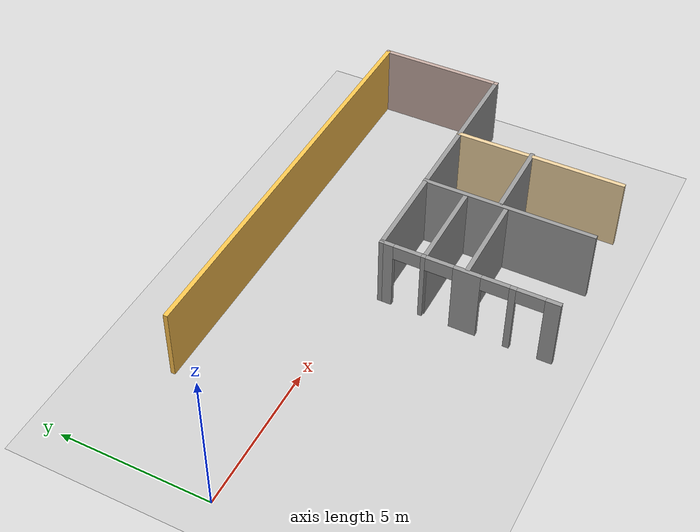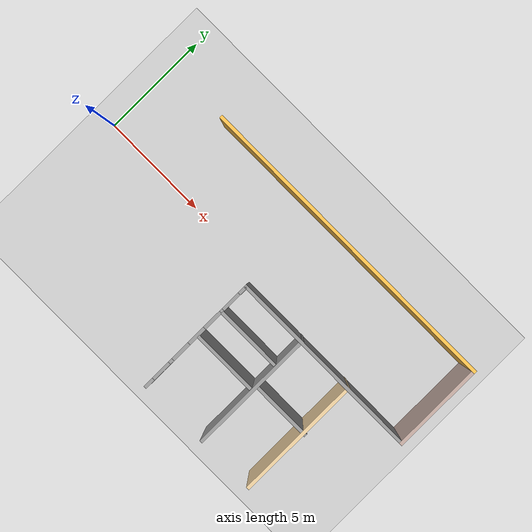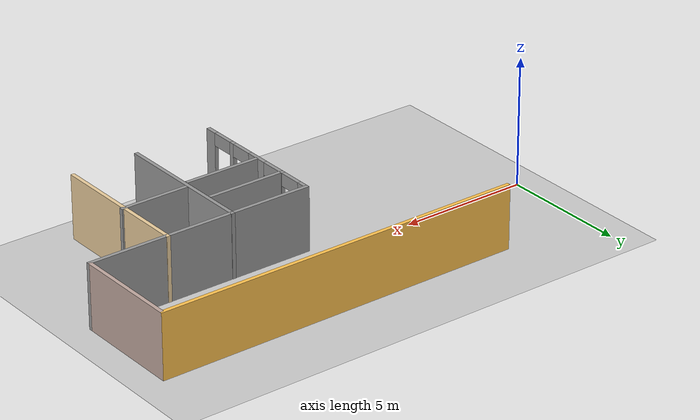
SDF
<sdf version="1.6">
 <world name="default">
  <model name="ground_plane">
   <static>1</static>
   <link name="link">
    <collision name="collision">
     <geometry><plane><normal>0 0 1</normal><size>100 100</size></plane></geometry>
     <surface><friction><ode><mu>100</mu><mu2>50</mu2></ode></friction></surface>
    </collision>
    <visual name="visual">
     <cast_shadows>0</cast_shadows>
     <geometry><plane><normal>0 0 1</normal><size>100 100</size></plane></geometry>
     <material>
      <script><uri>file://media/materials/scripts/gazebo.material</uri><name>Gazebo/Grey</name></script>
     </material>
    </visual>
   </link>
  </model>
  <model name="model">
   <link name="Wall_100">
    <pose>0.188472 0.1 0 0 0 -1.5708</pose>
    <visual name="Wall_100_Visual_8">
     <pose>1.96449 0 2.25 0 -0 0</pose>
     <geometry><box><size>0.9 0.15 0.5</size></box></geometry>
     <material>
      <script><uri>file://media/materials/scripts/gazebo.material</uri><name>Gazebo/Grey</name></script>
      <ambient>1 1 1 1</ambient>
      <shader type="pixel"/>
      <diffuse>0.7 0.7 0.7 1</diffuse>
      <specular>0.01 0.01 0.01 1</specular>
      <emissive>0 0 0 1</emissive>
     </material>
     <meta><layer>0</layer></meta>
    </visual>
    <visual name="Wall_100_Visual_0">
     <pose>-2.66165 0 1.25 0 -0 0</pose>
     <geometry><box><size>0.47671 0.15 2.5</size></box></geometry>
     <material>
      <script><uri>file://media/materials/scripts/gazebo.material</uri><name>Gazebo/Grey</name></script>
      <ambient>1 1 1 1</ambient>
      <shader type="pixel"/>
      <diffuse>0.7 0.7 0.7 1</diffuse>
      <specular>0.01 0.01 0.01 1</specular>
      <emissive>0 0 0 1</emissive>
     </material>
     <meta><layer>0</layer></meta>
    </visual>
    <visual name="Wall_100_Visual_1">
     <pose>-1.4503 0 1.25 0 -0 0</pose>
     <geometry><box><size>0.145974 0.15 2.5</size></box></geometry>
     <material>
      <script><uri>file://media/materials/scripts/gazebo.material</uri><name>Gazebo/Grey</name></script>
      <ambient>1 1 1 1</ambient>
      <shader type="pixel"/>
      <diffuse>0.7 0.7 0.7 1</diffuse>
      <specular>0.01 0.01 0.01 1</specular>
      <emissive>0 0 0 1</emissive>
     </material>
     <meta><layer>0</layer></meta>
    </visual>
    <visual name="Wall_100_Visual_2">
     <pose>-0.035162 0 1.25 0 -0 0</pose>
     <geometry><box><size>0.884308 0.15 2.5</size></box></geometry>
     <material>
      <script><uri>file://media/materials/scripts/gazebo.material</uri><name>Gazebo/Grey</name></script>
      <ambient>1 1 1 1</ambient>
      <shader type="pixel"/>
      <diffuse>0.7 0.7 0.7 1</diffuse>
      <specular>0.01 0.01 0.01 1</specular>
      <emissive>0 0 0 1</emissive>
     </material>
     <meta><layer>0</layer></meta>
    </visual>
    <visual name="Wall_100_Visual_3">
     <pose>1.41074 0 1.25 0 -0 0</pose>
     <geometry><box><size>0.207502 0.15 2.5</size></box></geometry>
     <material>
      <script><uri>file://media/materials/scripts/gazebo.material</uri><name>Gazebo/Grey</name></script>
      <ambient>1 1 1 1</ambient>
      <shader type="pixel"/>
      <diffuse>0.7 0.7 0.7 1</diffuse>
      <specular>0.01 0.01 0.01 1</specular>
      <emissive>0 0 0 1</emissive>
     </material>
     <meta><layer>0</layer></meta>
    </visual>
    <visual name="Wall_100_Visual_4">
     <pose>2.65725 0 1.25 0 -0 0</pose>
     <geometry><box><size>0.485506 0.15 2.5</size></box></geometry>
     <material>
      <script><uri>file://media/materials/scripts/gazebo.material</uri><name>Gazebo/Grey</name></script>
      <ambient>1 1 1 1</ambient>
      <shader type="pixel"/>
      <diffuse>0.7 0.7 0.7 1</diffuse>
      <specular>0.01 0.01 0.01 1</specular>
      <emissive>0 0 0 1</emissive>
     </material>
     <meta><layer>0</layer></meta>
    </visual>
    <visual name="Wall_100_Visual_5">
     <pose>-1.97329 0 2.25 0 -0 0</pose>
     <geometry><box><size>0.9 0.15 0.5</size></box></geometry>
     <material>
      <script><uri>file://media/materials/scripts/gazebo.material</uri><name>Gazebo/Grey</name></script>
      <ambient>1 1 1 1</ambient>
      <shader type="pixel"/>
      <diffuse>0.7 0.7 0.7 1</diffuse>
      <specular>0.01 0.01 0.01 1</specular>
      <emissive>0 0 0 1</emissive>
     </material>
     <meta><layer>0</layer></meta>
    </visual>
    <visual name="Wall_100_Visual_6">
     <pose>-0.927316 0 2.25 0 -0 0</pose>
     <geometry><box><size>0.9 0.15 0.5</size></box></geometry>
     <material>
      <script><uri>file://media/materials/scripts/gazebo.material</uri><name>Gazebo/Grey</name></script>
      <ambient>1 1 1 1</ambient>
      <shader type="pixel"/>
      <diffuse>0.7 0.7 0.7 1</diffuse>
      <specular>0.01 0.01 0.01 1</specular>
      <emissive>0 0 0 1</emissive>
     </material>
     <meta><layer>0</layer></meta>
    </visual>
    <visual name="Wall_100_Visual_7">
     <pose>0.856992 0 2.25 0 -0 0</pose>
     <geometry><box><size>0.9 0.15 0.5</size></box></geometry>
     <material>
      <script><uri>file://media/materials/scripts/gazebo.material</uri><name>Gazebo/Grey</name></script>
      <ambient>1 1 1 1</ambient>
      <shader type="pixel"/>
      <diffuse>0.7 0.7 0.7 1</diffuse>
      <specular>0.01 0.01 0.01 1</specular>
      <emissive>0 0 0 1</emissive>
     </material>
     <meta><layer>0</layer></meta>
    </visual>
    <collision name="Wall_100_Collision_0">
     <pose>-2.66165 0 1.25 0 -0 0</pose>
     <geometry><box><size>0.47671 0.15 2.5</size></box></geometry>
     <surface>
      <friction>
       <ode><mu>1</mu><mu2>1</mu2><fdir1>0 0 0</fdir1><slip1>0</slip1><slip2>0</slip2></ode>
       <torsional>
        <coefficient>1</coefficient>
        <patch_radius>0</patch_radius>
        <surface_radius>0</surface_radius>
        <use_patch_radius>1</use_patch_radius>
        <ode><slip>0</slip></ode>
       </torsional>
      </friction>
      <bounce><restitution_coefficient>0</restitution_coefficient><threshold>1e+06</threshold></bounce>
      <contact>
       <collide_without_contact>0</collide_without_contact>
       <collide_without_contact_bitmask>1</collide_without_contact_bitmask>
       <collide_bitmask>1</collide_bitmask>
       <ode>
        <soft_cfm>0</soft_cfm>
        <soft_erp>0.2</soft_erp>
        <kp>1e+13</kp>
        <kd>1</kd>
        <max_vel>0.01</max_vel>
        <min_depth>0</min_depth>
       </ode>
       <bullet>
        <split_impulse>1</split_impulse>
        <split_impulse_penetration_threshold>-0.01</split_impulse_penetration_threshold>
        <soft_cfm>0</soft_cfm>
        <soft_erp>0.2</soft_erp>
        <kp>1e+13</kp>
        <kd>1</kd>
       </bullet>
      </contact>
     </surface>
    </collision>
    <collision name="Wall_100_Collision_1">
     <pose>-1.4503 0 1.25 0 -0 0</pose>
     <geometry><box><size>0.145974 0.15 2.5</size></box></geometry>
     <surface>
      <friction>
       <ode><mu>1</mu><mu2>1</mu2><fdir1>0 0 0</fdir1><slip1>0</slip1><slip2>0</slip2></ode>
       <torsional>
        <coefficient>1</coefficient>
        <patch_radius>0</patch_radius>
        <surface_radius>0</surface_radius>
        <use_patch_radius>1</use_patch_radius>
        <ode><slip>0</slip></ode>
       </torsional>
      </friction>
      <bounce><restitution_coefficient>0</restitution_coefficient><threshold>1e+06</threshold></bounce>
      <contact>
       <collide_without_contact>0</collide_without_contact>
       <collide_without_contact_bitmask>1</collide_without_contact_bitmask>
       <collide_bitmask>1</collide_bitmask>
       <ode>
        <soft_cfm>0</soft_cfm>
        <soft_erp>0.2</soft_erp>
        <kp>1e+13</kp>
        <kd>1</kd>
        <max_vel>0.01</max_vel>
        <min_depth>0</min_depth>
       </ode>
       <bullet>
        <split_impulse>1</split_impulse>
        <split_impulse_penetration_threshold>-0.01</split_impulse_penetration_threshold>
        <soft_cfm>0</soft_cfm>
        <soft_erp>0.2</soft_erp>
        <kp>1e+13</kp>
        <kd>1</kd>
       </bullet>
      </contact>
     </surface>
    </collision>
    <collision name="Wall_100_Collision_2">
     <pose>-0.035162 0 1.25 0 -0 0</pose>
     <geometry><box><size>0.884308 0.15 2.5</size></box></geometry>
     <surface>
      <friction>
       <ode><mu>1</mu><mu2>1</mu2><fdir1>0 0 0</fdir1><slip1>0</slip1><slip2>0</slip2></ode>
       <torsional>
        <coefficient>1</coefficient>
        <patch_radius>0</patch_radius>
        <surface_radius>0</surface_radius>
        <use_patch_radius>1</use_patch_radius>
        <ode><slip>0</slip></ode>
       </torsional>
      </friction>
      <bounce><restitution_coefficient>0</restitution_coefficient><threshold>1e+06</threshold></bounce>
      <contact>
       <collide_without_contact>0</collide_without_contact>
       <collide_without_contact_bitmask>1</collide_without_contact_bitmask>
       <collide_bitmask>1</collide_bitmask>
       <ode>
        <soft_cfm>0</soft_cfm>
        <soft_erp>0.2</soft_erp>
        <kp>1e+13</kp>
        <kd>1</kd>
        <max_vel>0.01</max_vel>
        <min_depth>0</min_depth>
       </ode>
       <bullet>
        <split_impulse>1</split_impulse>
        <split_impulse_penetration_threshold>-0.01</split_impulse_penetration_threshold>
        <soft_cfm>0</soft_cfm>
        <soft_erp>0.2</soft_erp>
        <kp>1e+13</kp>
        <kd>1</kd>
       </bullet>
      </contact>
     </surface>
    </collision>
    <collision name="Wall_100_Collision_3">
     <pose>1.41074 0 1.25 0 -0 0</pose>
     <geometry><box><size>0.207502 0.15 2.5</size></box></geometry>
     <surface>
      <friction>
       <ode><mu>1</mu><mu2>1</mu2><fdir1>0 0 0</fdir1><slip1>0</slip1><slip2>0</slip2></ode>
       <torsional>
        <coefficient>1</coefficient>
        <patch_radius>0</patch_radius>
        <surface_radius>0</surface_radius>
        <use_patch_radius>1</use_patch_radius>
        <ode><slip>0</slip></ode>
       </torsional>
      </friction>
      <bounce><restitution_coefficient>0</restitution_coefficient><threshold>1e+06</threshold></bounce>
      <contact>
       <collide_without_contact>0</collide_without_contact>
       <collide_without_contact_bitmask>1</collide_without_contact_bitmask>
       <collide_bitmask>1</collide_bitmask>
       <ode>
        <soft_cfm>0</soft_cfm>
        <soft_erp>0.2</soft_erp>
        <kp>1e+13</kp>
        <kd>1</kd>
        <max_vel>0.01</max_vel>
        <min_depth>0</min_depth>
       </ode>
       <bullet>
        <split_impulse>1</split_impulse>
        <split_impulse_penetration_threshold>-0.01</split_impulse_penetration_threshold>
        <soft_cfm>0</soft_cfm>
        <soft_erp>0.2</soft_erp>
        <kp>1e+13</kp>
        <kd>1</kd>
       </bullet>
      </contact>
     </surface>
    </collision>
    <collision name="Wall_100_Collision_5">
     <pose>-1.97329 0 2.25 0 -0 0</pose>
     <geometry><box><size>0.9 0.15 0.5</size></box></geometry>
     <surface>
      <friction>
       <ode><mu>1</mu><mu2>1</mu2><fdir1>0 0 0</fdir1><slip1>0</slip1><slip2>0</slip2></ode>
       <torsional>
        <coefficient>1</coefficient>
        <patch_radius>0</patch_radius>
        <surface_radius>0</surface_radius>
        <use_patch_radius>1</use_patch_radius>
        <ode><slip>0</slip></ode>
       </torsional>
      </friction>
      <bounce><restitution_coefficient>0</restitution_coefficient><threshold>1e+06</threshold></bounce>
      <contact>
       <collide_without_contact>0</collide_without_contact>
       <collide_without_contact_bitmask>1</collide_without_contact_bitmask>
       <collide_bitmask>1</collide_bitmask>
       <ode>
        <soft_cfm>0</soft_cfm>
        <soft_erp>0.2</soft_erp>
        <kp>1e+13</kp>
        <kd>1</kd>
        <max_vel>0.01</max_vel>
        <min_depth>0</min_depth>
       </ode>
       <bullet>
        <split_impulse>1</split_impulse>
        <split_impulse_penetration_threshold>-0.01</split_impulse_penetration_threshold>
        <soft_cfm>0</soft_cfm>
        <soft_erp>0.2</soft_erp>
        <kp>1e+13</kp>
        <kd>1</kd>
       </bullet>
      </contact>
     </surface>
    </collision>
    <collision name="Wall_100_Collision_4">
     <pose>2.65725 0 1.25 0 -0 0</pose>
     <geometry><box><size>0.485506 0.15 2.5</size></box></geometry>
     <surface>
      <friction>
       <ode><mu>1</mu><mu2>1</mu2><fdir1>0 0 0</fdir1><slip1>0</slip1><slip2>0</slip2></ode>
       <torsional>
        <coefficient>1</coefficient>
        <patch_radius>0</patch_radius>
        <surface_radius>0</surface_radius>
        <use_patch_radius>1</use_patch_radius>
        <ode><slip>0</slip></ode>
       </torsional>
      </friction>
      <bounce><restitution_coefficient>0</restitution_coefficient><threshold>1e+06</threshold></bounce>
      <contact>
       <collide_without_contact>0</collide_without_contact>
       <collide_without_contact_bitmask>1</collide_without_contact_bitmask>
       <collide_bitmask>1</collide_bitmask>
       <ode>
        <soft_cfm>0</soft_cfm>
        <soft_erp>0.2</soft_erp>
        <kp>1e+13</kp>
        <kd>1</kd>
        <max_vel>0.01</max_vel>
        <min_depth>0</min_depth>
       </ode>
       <bullet>
        <split_impulse>1</split_impulse>
        <split_impulse_penetration_threshold>-0.01</split_impulse_penetration_threshold>
        <soft_cfm>0</soft_cfm>
        <soft_erp>0.2</soft_erp>
        <kp>1e+13</kp>
        <kd>1</kd>
       </bullet>
      </contact>
     </surface>
    </collision>
    <collision name="Wall_100_Collision_6">
     <pose>-0.927316 0 2.25 0 -0 0</pose>
     <geometry><box><size>0.9 0.15 0.5</size></box></geometry>
     <surface>
      <friction>
       <ode><mu>1</mu><mu2>1</mu2><fdir1>0 0 0</fdir1><slip1>0</slip1><slip2>0</slip2></ode>
       <torsional>
        <coefficient>1</coefficient>
        <patch_radius>0</patch_radius>
        <surface_radius>0</surface_radius>
        <use_patch_radius>1</use_patch_radius>
        <ode><slip>0</slip></ode>
       </torsional>
      </friction>
      <bounce><restitution_coefficient>0</restitution_coefficient><threshold>1e+06</threshold></bounce>
      <contact>
       <collide_without_contact>0</collide_without_contact>
       <collide_without_contact_bitmask>1</collide_without_contact_bitmask>
       <collide_bitmask>1</collide_bitmask>
       <ode>
        <soft_cfm>0</soft_cfm>
        <soft_erp>0.2</soft_erp>
        <kp>1e+13</kp>
        <kd>1</kd>
        <max_vel>0.01</max_vel>
        <min_depth>0</min_depth>
       </ode>
       <bullet>
        <split_impulse>1</split_impulse>
        <split_impulse_penetration_threshold>-0.01</split_impulse_penetration_threshold>
        <soft_cfm>0</soft_cfm>
        <soft_erp>0.2</soft_erp>
        <kp>1e+13</kp>
        <kd>1</kd>
       </bullet>
      </contact>
     </surface>
    </collision>
    <collision name="Wall_100_Collision_7">
     <pose>0.856992 0 2.25 0 -0 0</pose>
     <geometry><box><size>0.9 0.15 0.5</size></box></geometry>
     <surface>
      <friction>
       <ode><mu>1</mu><mu2>1</mu2><fdir1>0 0 0</fdir1><slip1>0</slip1><slip2>0</slip2></ode>
       <torsional>
        <coefficient>1</coefficient>
        <patch_radius>0</patch_radius>
        <surface_radius>0</surface_radius>
        <use_patch_radius>1</use_patch_radius>
        <ode><slip>0</slip></ode>
       </torsional>
      </friction>
      <bounce><restitution_coefficient>0</restitution_coefficient><threshold>1e+06</threshold></bounce>
      <contact>
       <collide_without_contact>0</collide_without_contact>
       <collide_without_contact_bitmask>1</collide_without_contact_bitmask>
       <collide_bitmask>1</collide_bitmask>
       <ode>
        <soft_cfm>0</soft_cfm>
        <soft_erp>0.2</soft_erp>
        <kp>1e+13</kp>
        <kd>1</kd>
        <max_vel>0.01</max_vel>
        <min_depth>0</min_depth>
       </ode>
       <bullet>
        <split_impulse>1</split_impulse>
        <split_impulse_penetration_threshold>-0.01</split_impulse_penetration_threshold>
        <soft_cfm>0</soft_cfm>
        <soft_erp>0.2</soft_erp>
        <kp>1e+13</kp>
        <kd>1</kd>
       </bullet>
      </contact>
     </surface>
    </collision>
    <collision name="Wall_100_Collision_8">
     <pose>1.96449 0 2.25 0 -0 0</pose>
     <geometry><box><size>0.9 0.15 0.5</size></box></geometry>
     <surface>
      <friction>
       <ode><mu>1</mu><mu2>1</mu2><fdir1>0 0 0</fdir1><slip1>0</slip1><slip2>0</slip2></ode>
       <torsional>
        <coefficient>1</coefficient>
        <patch_radius>0</patch_radius>
        <surface_radius>0</surface_radius>
        <use_patch_radius>1</use_patch_radius>
        <ode><slip>0</slip></ode>
       </torsional>
      </friction>
      <bounce><restitution_coefficient>0</restitution_coefficient><threshold>1e+06</threshold></bounce>
      <contact>
       <collide_without_contact>0</collide_without_contact>
       <collide_without_contact_bitmask>1</collide_without_contact_bitmask>
       <collide_bitmask>1</collide_bitmask>
       <ode>
        <soft_cfm>0</soft_cfm>
        <soft_erp>0.2</soft_erp>
        <kp>1e+13</kp>
        <kd>1</kd>
        <max_vel>0.01</max_vel>
        <min_depth>0</min_depth>
       </ode>
       <bullet>
        <split_impulse>1</split_impulse>
        <split_impulse_penetration_threshold>-0.01</split_impulse_penetration_threshold>
        <soft_cfm>0</soft_cfm>
        <soft_erp>0.2</soft_erp>
        <kp>1e+13</kp>
        <kd>1</kd>
       </bullet>
      </contact>
     </surface>
    </collision>
   </link>
   <link name="Wall_102">
    <pose>1.73212 1.51954 0 0 -0 0</pose>
    <visual name="Wall_102_Visual">
     <pose>0 0 1.25 0 -0 0</pose>
     <geometry><box><size>3 0.15 2.5</size></box></geometry>
     <material>
      <script><uri>file://media/materials/scripts/gazebo.material</uri><name>Gazebo/Grey</name></script>
      <ambient>1 1 1 1</ambient>
      <shader type="pixel"/>
      <diffuse>0.7 0.7 0.7 1</diffuse>
      <specular>0.01 0.01 0.01 1</specular>
      <emissive>0 0 0 1</emissive>
     </material>
     <meta><layer>0</layer></meta>
    </visual>
    <collision name="Wall_102_Collision">
     <pose>0 0 1.25 0 -0 0</pose>
     <geometry><box><size>3 0.15 2.5</size></box></geometry>
     <surface>
      <friction>
       <ode><mu>1</mu><mu2>1</mu2><fdir1>0 0 0</fdir1><slip1>0</slip1><slip2>0</slip2></ode>
       <torsional>
        <coefficient>1</coefficient>
        <patch_radius>0</patch_radius>
        <surface_radius>0</surface_radius>
        <use_patch_radius>1</use_patch_radius>
        <ode><slip>0</slip></ode>
       </torsional>
      </friction>
      <bounce><restitution_coefficient>0</restitution_coefficient><threshold>1e+06</threshold></bounce>
      <contact>
       <collide_without_contact>0</collide_without_contact>
       <collide_without_contact_bitmask>1</collide_without_contact_bitmask>
       <collide_bitmask>1</collide_bitmask>
       <ode>
        <soft_cfm>0</soft_cfm>
        <soft_erp>0.2</soft_erp>
        <kp>1e+13</kp>
        <kd>1</kd>
        <max_vel>0.01</max_vel>
        <min_depth>0</min_depth>
       </ode>
       <bullet>
        <split_impulse>1</split_impulse>
        <split_impulse_penetration_threshold>-0.01</split_impulse_penetration_threshold>
        <soft_cfm>0</soft_cfm>
        <soft_erp>0.2</soft_erp>
        <kp>1e+13</kp>
        <kd>1</kd>
       </bullet>
      </contact>
     </surface>
    </collision>
   </link>
   <link name="Wall_104">
    <pose>1.73212 0.165926 0 0 -0 0</pose>
    <visual name="Wall_104_Visual">
     <pose>0 0 1.25 0 -0 0</pose>
     <geometry><box><size>3 0.15 2.5</size></box></geometry>
     <material>
      <script><uri>file://media/materials/scripts/gazebo.material</uri><name>Gazebo/Grey</name></script>
      <ambient>1 1 1 1</ambient>
      <shader type="pixel"/>
      <diffuse>0.7 0.7 0.7 1</diffuse>
      <specular>0.01 0.01 0.01 1</specular>
      <emissive>0 0 0 1</emissive>
     </material>
     <meta><layer>0</layer></meta>
    </visual>
    <collision name="Wall_104_Collision">
     <pose>0 0 1.25 0 -0 0</pose>
     <geometry><box><size>3 0.15 2.5</size></box></geometry>
     <surface>
      <friction>
       <ode><mu>1</mu><mu2>1</mu2><fdir1>0 0 0</fdir1><slip1>0</slip1><slip2>0</slip2></ode>
       <torsional>
        <coefficient>1</coefficient>
        <patch_radius>0</patch_radius>
        <surface_radius>0</surface_radius>
        <use_patch_radius>1</use_patch_radius>
        <ode><slip>0</slip></ode>
       </torsional>
      </friction>
      <bounce><restitution_coefficient>0</restitution_coefficient><threshold>1e+06</threshold></bounce>
      <contact>
       <collide_without_contact>0</collide_without_contact>
       <collide_without_contact_bitmask>1</collide_without_contact_bitmask>
       <collide_bitmask>1</collide_bitmask>
       <ode>
        <soft_cfm>0</soft_cfm>
        <soft_erp>0.2</soft_erp>
        <kp>1e+13</kp>
        <kd>1</kd>
        <max_vel>0.01</max_vel>
        <min_depth>0</min_depth>
       </ode>
       <bullet>
        <split_impulse>1</split_impulse>
        <split_impulse_penetration_threshold>-0.01</split_impulse_penetration_threshold>
        <soft_cfm>0</soft_cfm>
        <soft_erp>0.2</soft_erp>
        <kp>1e+13</kp>
        <kd>1</kd>
       </bullet>
      </contact>
     </surface>
    </collision>
   </link>
   <link name="Wall_13">
    <pose>1.86347 7.025 0 0 -0 0</pose>
    <visual name="Wall_13_Visual">
     <pose>0 0 1.25 0 -0 0</pose>
     <geometry><box><size>14.5 0.15 2.5</size></box></geometry>
     <material>
      <script><uri>file://media/materials/scripts/gazebo.material</uri><name>Gazebo/Grey</name></script>
      <ambient>1 0.764706 0.305882 1</ambient>
      <shader type="pixel"/>
      <diffuse>0.7 0.7 0.7 1</diffuse>
      <specular>0.01 0.01 0.01 1</specular>
      <emissive>0 0 0 1</emissive>
     </material>
     <meta><layer>0</layer></meta>
    </visual>
    <collision name="Wall_13_Collision">
     <pose>0 0 1.25 0 -0 0</pose>
     <geometry><box><size>14.5 0.15 2.5</size></box></geometry>
     <surface>
      <friction>
       <ode><mu>1</mu><mu2>1</mu2><fdir1>0 0 0</fdir1><slip1>0</slip1><slip2>0</slip2></ode>
       <torsional>
        <coefficient>1</coefficient>
        <patch_radius>0</patch_radius>
        <surface_radius>0</surface_radius>
        <use_patch_radius>1</use_patch_radius>
        <ode><slip>0</slip></ode>
       </torsional>
      </friction>
      <bounce><restitution_coefficient>0</restitution_coefficient><threshold>1e+06</threshold></bounce>
      <contact>
       <collide_without_contact>0</collide_without_contact>
       <collide_without_contact_bitmask>1</collide_without_contact_bitmask>
       <collide_bitmask>1</collide_bitmask>
       <ode>
        <soft_cfm>0</soft_cfm>
        <soft_erp>0.2</soft_erp>
        <kp>1e+13</kp>
        <kd>1</kd>
        <max_vel>0.01</max_vel>
        <min_depth>0</min_depth>
       </ode>
       <bullet>
        <split_impulse>1</split_impulse>
        <split_impulse_penetration_threshold>-0.01</split_impulse_penetration_threshold>
        <soft_cfm>0</soft_cfm>
        <soft_erp>0.2</soft_erp>
        <kp>1e+13</kp>
        <kd>1</kd>
       </bullet>
      </contact>
     </surface>
    </collision>
   </link>
   <link name="Wall_24">
    <pose>9.03847 4.975 0 0 0 -1.5708</pose>
    <visual name="Wall_24_Visual">
     <pose>0 0 1.25 0 -0 0</pose>
     <geometry><box><size>4.25 0.15 2.5</size></box></geometry>
     <material>
      <script><uri>file://media/materials/scripts/gazebo.material</uri><name>Gazebo/Grey</name></script>
      <ambient>0.760784 0.662745 0.627451 1</ambient>
      <shader type="pixel"/>
      <diffuse>0.7 0.7 0.7 1</diffuse>
      <specular>0.01 0.01 0.01 1</specular>
      <emissive>0 0 0 1</emissive>
     </material>
     <meta><layer>0</layer></meta>
    </visual>
    <collision name="Wall_24_Collision">
     <pose>0 0 1.25 0 -0 0</pose>
     <geometry><box><size>4.25 0.15 2.5</size></box></geometry>
     <surface>
      <friction>
       <ode><mu>1</mu><mu2>1</mu2><fdir1>0 0 0</fdir1><slip1>0</slip1><slip2>0</slip2></ode>
       <torsional>
        <coefficient>1</coefficient>
        <patch_radius>0</patch_radius>
        <surface_radius>0</surface_radius>
        <use_patch_radius>1</use_patch_radius>
        <ode><slip>0</slip></ode>
       </torsional>
      </friction>
      <bounce><restitution_coefficient>0</restitution_coefficient><threshold>1e+06</threshold></bounce>
      <contact>
       <collide_without_contact>0</collide_without_contact>
       <collide_without_contact_bitmask>1</collide_without_contact_bitmask>
       <collide_bitmask>1</collide_bitmask>
       <ode>
        <soft_cfm>0</soft_cfm>
        <soft_erp>0.2</soft_erp>
        <kp>1e+13</kp>
        <kd>1</kd>
        <max_vel>0.01</max_vel>
        <min_depth>0</min_depth>
       </ode>
       <bullet>
        <split_impulse>1</split_impulse>
        <split_impulse_penetration_threshold>-0.01</split_impulse_penetration_threshold>
        <soft_cfm>0</soft_cfm>
        <soft_erp>0.2</soft_erp>
        <kp>1e+13</kp>
        <kd>1</kd>
       </bullet>
      </contact>
     </surface>
    </collision>
   </link>
   <link name="Wall_26">
    <pose>4.61347 2.925 0 0 -0 3.14159</pose>
    <visual name="Wall_26_Visual">
     <pose>0 0 1.25 0 -0 0</pose>
     <geometry><box><size>9 0.15 2.5</size></box></geometry>
     <material>
      <script><uri>file://media/materials/scripts/gazebo.material</uri><name>Gazebo/Grey</name></script>
      <ambient>1 1 1 1</ambient>
      <shader type="pixel"/>
      <diffuse>0.7 0.7 0.7 1</diffuse>
      <specular>0.01 0.01 0.01 1</specular>
      <emissive>0 0 0 1</emissive>
     </material>
     <meta><layer>0</layer></meta>
    </visual>
    <collision name="Wall_26_Collision">
     <pose>0 0 1.25 0 -0 0</pose>
     <geometry><box><size>9 0.15 2.5</size></box></geometry>
     <surface>
      <friction>
       <ode><mu>1</mu><mu2>1</mu2><fdir1>0 0 0</fdir1><slip1>0</slip1><slip2>0</slip2></ode>
       <torsional>
        <coefficient>1</coefficient>
        <patch_radius>0</patch_radius>
        <surface_radius>0</surface_radius>
        <use_patch_radius>1</use_patch_radius>
        <ode><slip>0</slip></ode>
       </torsional>
      </friction>
      <bounce><restitution_coefficient>0</restitution_coefficient><threshold>1e+06</threshold></bounce>
      <contact>
       <collide_without_contact>0</collide_without_contact>
       <collide_without_contact_bitmask>1</collide_without_contact_bitmask>
       <collide_bitmask>1</collide_bitmask>
       <ode>
        <soft_cfm>0</soft_cfm>
        <soft_erp>0.2</soft_erp>
        <kp>1e+13</kp>
        <kd>1</kd>
        <max_vel>0.01</max_vel>
        <min_depth>0</min_depth>
       </ode>
       <bullet>
        <split_impulse>1</split_impulse>
        <split_impulse_penetration_threshold>-0.01</split_impulse_penetration_threshold>
        <soft_cfm>0</soft_cfm>
        <soft_erp>0.2</soft_erp>
        <kp>1e+13</kp>
        <kd>1</kd>
       </bullet>
      </contact>
     </surface>
    </collision>
   </link>
   <link name="Wall_94">
    <pose>5.96769 0.13468 0 0 0 -1.5708</pose>
    <visual name="Wall_94_Visual">
     <pose>0 0 1.25 0 -0 0</pose>
     <geometry><box><size>5.75 0.15 2.5</size></box></geometry>
     <material>
      <script><uri>file://media/materials/scripts/gazebo.material</uri><name>Gazebo/Grey</name></script>
      <ambient>0.921569 0.807843 0.615686 1</ambient>
      <shader type="pixel"/>
      <diffuse>0.7 0.7 0.7 1</diffuse>
      <specular>0.01 0.01 0.01 1</specular>
      <emissive>0 0 0 1</emissive>
     </material>
     <meta><layer>0</layer></meta>
    </visual>
    <collision name="Wall_94_Collision">
     <pose>0 0 1.25 0 -0 0</pose>
     <geometry><box><size>5.75 0.15 2.5</size></box></geometry>
     <surface>
      <friction>
       <ode><mu>1</mu><mu2>1</mu2><fdir1>0 0 0</fdir1><slip1>0</slip1><slip2>0</slip2></ode>
       <torsional>
        <coefficient>1</coefficient>
        <patch_radius>0</patch_radius>
        <surface_radius>0</surface_radius>
        <use_patch_radius>1</use_patch_radius>
        <ode><slip>0</slip></ode>
       </torsional>
      </friction>
      <bounce><restitution_coefficient>0</restitution_coefficient><threshold>1e+06</threshold></bounce>
      <contact>
       <collide_without_contact>0</collide_without_contact>
       <collide_without_contact_bitmask>1</collide_without_contact_bitmask>
       <collide_bitmask>1</collide_bitmask>
       <ode>
        <soft_cfm>0</soft_cfm>
        <soft_erp>0.2</soft_erp>
        <kp>1e+13</kp>
        <kd>1</kd>
        <max_vel>0.01</max_vel>
        <min_depth>0</min_depth>
       </ode>
       <bullet>
        <split_impulse>1</split_impulse>
        <split_impulse_penetration_threshold>-0.01</split_impulse_penetration_threshold>
        <soft_cfm>0</soft_cfm>
        <soft_erp>0.2</soft_erp>
        <kp>1e+13</kp>
        <kd>1</kd>
       </bullet>
      </contact>
     </surface>
    </collision>
   </link>
   <link name="Wall_96">
    <pose>3.32199 0.13468 0 0 0 -1.5708</pose>
    <visual name="Wall_96_Visual">
     <pose>0 0 1.25 0 -0 0</pose>
     <geometry><box><size>5.75 0.15 2.5</size></box></geometry>
     <material>
      <script><uri>file://media/materials/scripts/gazebo.material</uri><name>Gazebo/Grey</name></script>
      <ambient>1 1 1 1</ambient>
      <shader type="pixel"/>
      <diffuse>0.7 0.7 0.7 1</diffuse>
      <specular>0.01 0.01 0.01 1</specular>
      <emissive>0 0 0 1</emissive>
     </material>
     <meta><layer>0</layer></meta>
    </visual>
    <collision name="Wall_96_Collision">
     <pose>0 0 1.25 0 -0 0</pose>
     <geometry><box><size>5.75 0.15 2.5</size></box></geometry>
     <surface>
      <friction>
       <ode><mu>1</mu><mu2>1</mu2><fdir1>0 0 0</fdir1><slip1>0</slip1><slip2>0</slip2></ode>
       <torsional>
        <coefficient>1</coefficient>
        <patch_radius>0</patch_radius>
        <surface_radius>0</surface_radius>
        <use_patch_radius>1</use_patch_radius>
        <ode><slip>0</slip></ode>
       </torsional>
      </friction>
      <bounce><restitution_coefficient>0</restitution_coefficient><threshold>1e+06</threshold></bounce>
      <contact>
       <collide_without_contact>0</collide_without_contact>
       <collide_without_contact_bitmask>1</collide_without_contact_bitmask>
       <collide_bitmask>1</collide_bitmask>
       <ode>
        <soft_cfm>0</soft_cfm>
        <soft_erp>0.2</soft_erp>
        <kp>1e+13</kp>
        <kd>1</kd>
        <max_vel>0.01</max_vel>
        <min_depth>0</min_depth>
       </ode>
       <bullet>
        <split_impulse>1</split_impulse>
        <split_impulse_penetration_threshold>-0.01</split_impulse_penetration_threshold>
        <soft_cfm>0</soft_cfm>
        <soft_erp>0.2</soft_erp>
        <kp>1e+13</kp>
        <kd>1</kd>
       </bullet>
      </contact>
     </surface>
    </collision>
   </link>
   <link name="Wall_98">
    <pose>4.72922 0.412037 0 0 -0 3.14159</pose>
    <visual name="Wall_98_Visual">
     <pose>0 0 1.25 0 -0 0</pose>
     <geometry><box><size>2.75 0.15 2.5</size></box></geometry>
     <material>
      <script><uri>file://media/materials/scripts/gazebo.material</uri><name>Gazebo/Grey</name></script>
      <ambient>1 1 1 1</ambient>
      <shader type="pixel"/>
      <diffuse>0.7 0.7 0.7 1</diffuse>
      <specular>0.01 0.01 0.01 1</specular>
      <emissive>0 0 0 1</emissive>
     </material>
     <meta><layer>0</layer></meta>
    </visual>
    <collision name="Wall_98_Collision">
     <pose>0 0 1.25 0 -0 0</pose>
     <geometry><box><size>2.75 0.15 2.5</size></box></geometry>
     <surface>
      <friction>
       <ode><mu>1</mu><mu2>1</mu2><fdir1>0 0 0</fdir1><slip1>0</slip1><slip2>0</slip2></ode>
       <torsional>
        <coefficient>1</coefficient>
        <patch_radius>0</patch_radius>
        <surface_radius>0</surface_radius>
        <use_patch_radius>1</use_patch_radius>
        <ode><slip>0</slip></ode>
       </torsional>
      </friction>
      <bounce><restitution_coefficient>0</restitution_coefficient><threshold>1e+06</threshold></bounce>
      <contact>
       <collide_without_contact>0</collide_without_contact>
       <collide_without_contact_bitmask>1</collide_without_contact_bitmask>
       <collide_bitmask>1</collide_bitmask>
       <ode>
        <soft_cfm>0</soft_cfm>
        <soft_erp>0.2</soft_erp>
        <kp>1e+13</kp>
        <kd>1</kd>
        <max_vel>0.01</max_vel>
        <min_depth>0</min_depth>
       </ode>
       <bullet>
        <split_impulse>1</split_impulse>
        <split_impulse_penetration_threshold>-0.01</split_impulse_penetration_threshold>
        <soft_cfm>0</soft_cfm>
        <soft_erp>0.2</soft_erp>
        <kp>1e+13</kp>
        <kd>1</kd>
       </bullet>
      </contact>
     </surface>
    </collision>
   </link>
   <static>1</static>
   <pose>8.76473 -3.61191 0 0 -0 0</pose>
  </model>
 </world>
</sdf>
